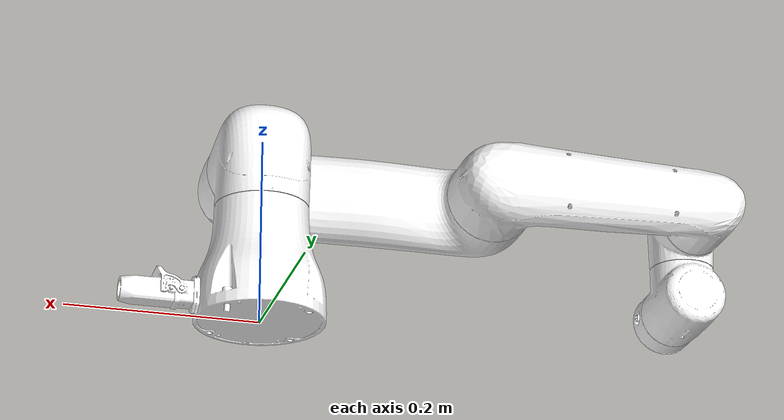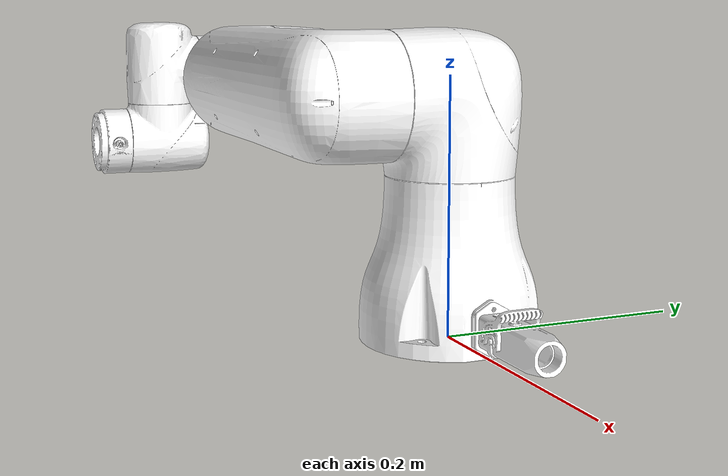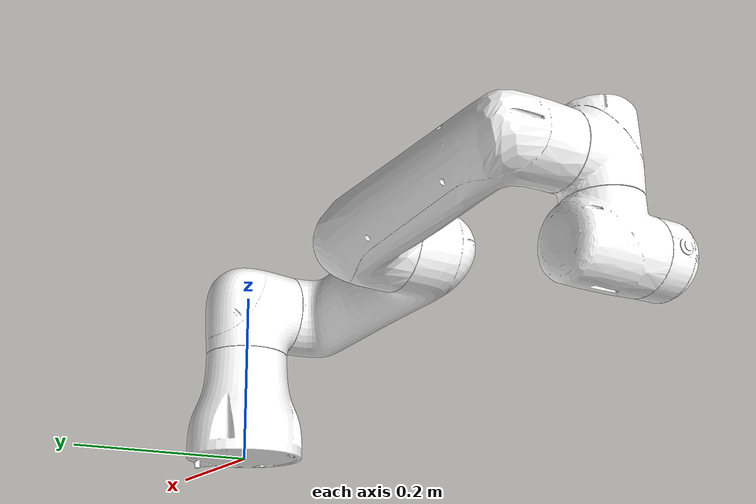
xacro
<?xml version="1.0" encoding="utf-8"?>
<robot name="smri3" xmlns:xacro="http://www.ros.org/wiki/xacro">
  <xacro:arg name="robot_ip" default=""/>
  <xacro:arg name="hardware_backend" default="real"/>
  <xacro:arg name="log_passthrough_commands" default="false"/>
  <xacro:arg name="gazebo_controllers_file" default="$(find smrcore_hardware)/config/smri3_gazebo_controllers.yaml"/>
  <xacro:property name="hardware_backend_value" value="$(arg hardware_backend)"/>
  <xacro:include filename="$(find smrcore_description)/urdf/smri3.ros2_control.xacro"/>
  <link
    name="base_link">
    <inertial>
      <origin
        xyz="0.0012271 3.5719E-05 0.067242"
        rpy="0 0 0" />
      <mass
        value="2.3653" />
      <inertia
        ixx="0.0042835"
        ixy="-3.3891E-07"
        ixz="-3.3159E-05"
        iyy="0.0041819"
        iyz="-2.8837E-06"
        izz="0.0038594" />
    </inertial>
    <visual>
      <origin
        xyz="0 0 0"
        rpy="0 0 0" />
      <geometry>
        <mesh
          filename="package://smrcore_description/meshes/smri3/base_link.STL" />
      </geometry>
      <material
        name="">
        <color
          rgba="1 1 1 1" />
      </material>
    </visual>
    <collision>
      <origin
        xyz="0 0 0"
        rpy="0 0 0" />
      <geometry>
        <mesh
          filename="package://smrcore_description/meshes/smri3/base_link.STL" />
      </geometry>
    </collision>
  </link>
  <link
    name="shoulder_link">
    <inertial>
      <origin
        xyz="-0.014568 -3.2077E-05 0.055988"
        rpy="0 0 0" />
      <mass
        value="2.1469" />
      <inertia
        ixx="0.0025223"
        ixy="2.9436E-06"
        ixz="0.00024428"
        iyy="0.0028291"
        iyz="-4.3095E-07"
        izz="0.0028887" />
    </inertial>
    <visual>
      <origin
        xyz="0 0 0"
        rpy="0 0 0" />
      <geometry>
        <mesh
          filename="package://smrcore_description/meshes/smri3/shoulder_link.STL" />
      </geometry>
      <material
        name="">
        <color
          rgba="1 1 1 1" />
      </material>
    </visual>
    <collision>
      <origin
        xyz="0 0 0"
        rpy="0 0 0" />
      <geometry>
        <mesh
          filename="package://smrcore_description/meshes/smri3/shoulder_link.STL" />
      </geometry>
    </collision>
  </link>
  <joint
    name="base_joint"
    type="revolute">
    <origin
      xyz="0 0 0.1245"
      rpy="0 0 0" />
    <parent
      link="base_link" />
    <child
      link="shoulder_link" />
    <axis
      xyz="0 0 1" />
    <!-- dynamics: aligned with robot.xml joint damping / frictionloss -->
    <dynamics
      damping="1.37712"
      friction="2.12262" />
    <limit
      lower="-6.283185307"
      upper="6.283185307"
      effort="200" velocity="3.14" />
  </joint>
  <link
    name="upper_arm_link">
    <inertial>
      <origin
        xyz="-0.1221 2.3317E-06 0.043604"
        rpy="0 0 0" />
      <mass
        value="1.2763" />
      <inertia
        ixx="0.0015357"
        ixy="2.7236E-07"
        ixz="0.00015542"
        iyy="0.013496"
        iyz="3.9216E-08"
        izz="0.01436" />
    </inertial>
    <visual>
      <origin
        xyz="0 0 0"
        rpy="0 0 0" />
      <geometry>
        <mesh
          filename="package://smrcore_description/meshes/smri3/upper_arm_link.STL" />
      </geometry>
      <material
        name="">
        <color
          rgba="1 1 1 1" />
      </material>
    </visual>
    <collision>
      <origin
        xyz="0 0 0"
        rpy="0 0 0" />
      <geometry>
        <mesh
          filename="package://smrcore_description/meshes/smri3/upper_arm_link.STL" />
      </geometry>
    </collision>
  </link>
  <joint
    name="shoulder_joint"
    type="revolute">
    <origin
      xyz="0 -0.0462 0.061"
      rpy="1.5708 0 0" />
    <parent
      link="shoulder_link" />
    <child
      link="upper_arm_link" />
    <axis
      xyz="0 0 1" />
    <dynamics
      damping="1.43903"
      friction="1.66347" />
    <limit
      lower="-4.36332313"
      upper="1.221730476"
      effort="200" velocity="3.14" />
  </joint>
  <link
    name="lower_arm_link">
    <inertial>
      <origin
        xyz="-0.070306 0.00048901 -0.021154"
        rpy="0 0 0" />
      <mass
        value="3.1461" />
      <inertia
        ixx="0.0034995"
        ixy="-2.2813E-07"
        ixz="-0.00055074"
        iyy="0.013403"
        iyz="-2.7583E-06"
        izz="0.013226" />
    </inertial>
    <visual>
      <origin
        xyz="0 0 0"
        rpy="0 0 0" />
      <geometry>
        <mesh
          filename="package://smrcore_description/meshes/smri3/lower_arm_link.STL" />
      </geometry>
      <material
        name="">
        <color
          rgba="1 1 1 1" />
      </material>
    </visual>
    <collision>
      <origin
        xyz="0 0 0"
        rpy="0 0 0" />
      <geometry>
        <mesh
          filename="package://smrcore_description/meshes/smri3/lower_arm_link.STL" />
      </geometry>
    </collision>
  </link>
  <joint
    name="elbow_joint"
    type="revolute">
    <origin
      xyz="-0.263 0 0"
      rpy="0 0 0" />
    <parent
      link="upper_arm_link" />
    <child
      link="lower_arm_link" />
    <axis
      xyz="0 0 1" />
    <dynamics
      damping="1.61981"
      friction="2.73848" />
    <limit
      lower="-2.757620218"
      upper="2.757620218"
      effort="200" velocity="3.14" />
  </joint>
  <link
    name="proximal_wrist_link">
    <inertial>
      <origin
        xyz="8.7148E-05 -0.0025009 0.040305"
        rpy="0 0 0" />
      <mass
        value="0.7728" />
      <inertia
        ixx="0.00035692"
        ixy="-4.0722E-08"
        ixz="9.0915E-08"
        iyy="0.00050564"
        iyz="5.7996E-05"
        izz="0.00038996" />
    </inertial>
    <visual>
      <origin
        xyz="0 0 0"
        rpy="0 0 0" />
      <geometry>
        <mesh
          filename="package://smrcore_description/meshes/smri3/proximal_wrist_link.STL" />
      </geometry>
      <material
        name="">
        <color
          rgba="1 1 1 1" />
      </material>
    </visual>
    <collision>
      <origin
        xyz="0 0 0"
        rpy="0 0 0" />
      <geometry>
        <mesh
          filename="package://smrcore_description/meshes/smri3/proximal_wrist_link.STL" />
      </geometry>
    </collision>
  </link>
  <joint
    name="wrist1_joint"
    type="revolute">
    <origin
      xyz="-0.236 0 0.0158"
      rpy="0 0 0" />
    <parent
      link="lower_arm_link" />
    <child
      link="proximal_wrist_link" />
    <axis
      xyz="0 0 1" />
    <dynamics
      damping="0.22439"
      friction="0.50985" />
    <limit
      lower="-4.71238898"
      upper="1.570796327"
      effort="120" velocity="3.14" />
  </joint>
  <link
    name="distal_wrist_link">
    <inertial>
      <origin
        xyz="-7.8317E-05 0.0024461 0.039842"
        rpy="0 0 0" />
      <mass
        value="0.7827" />
      <inertia
        ixx="0.00035481"
        ixy="-3.3296E-08"
        ixz="-1.8547E-07"
        iyy="0.00051068"
        iyz="-5.5945E-05"
        izz="0.00038996" />
    </inertial>
    <visual>
      <origin
        xyz="0 0 0"
        rpy="0 0 0" />
      <geometry>
        <mesh
          filename="package://smrcore_description/meshes/smri3/distal_wrist_link.STL" />
      </geometry>
      <material
        name="">
        <color
          rgba="1 1 1 1" />
      </material>
    </visual>
    <collision>
      <origin
        xyz="0 0 0"
        rpy="0 0 0" />
      <geometry>
        <mesh
          filename="package://smrcore_description/meshes/smri3/distal_wrist_link.STL" />
      </geometry>
    </collision>
  </link>
  <joint
    name="wrist2_joint"
    type="revolute">
    <origin
      xyz="0 -0.038 0.041"
      rpy="1.5708 0 0" />
    <parent
      link="proximal_wrist_link" />
    <child
      link="distal_wrist_link" />
    <axis
      xyz="0 0 1" />
    <dynamics
      damping="0.19644"
      friction="0.51623" />
    <limit
      lower="-2.268928028"
      upper="2.268928028"
      effort="120" velocity="3.14" />
  </joint>
  <link
    name="flange_link">
    <inertial>
      <origin
        xyz="0.00029338 -0.00022112 0.01719"
        rpy="0 0 0" />
      <mass
        value="0.17609" />
      <inertia
        ixx="6.4295E-05"
        ixy="1.5695E-08"
        ixz="3.1492E-07"
        iyy="6.2963E-05"
        iyz="-5.8072E-08"
        izz="0.00011856" />
    </inertial>
    <visual>
      <origin
        xyz="0 0 0"
        rpy="0 0 0" />
      <geometry>
        <mesh
          filename="package://smrcore_description/meshes/smri3/flange_link.STL" />
      </geometry>
      <material
        name="">
        <color
          rgba="1 1 1 1" />
      </material>
    </visual>
    <collision>
      <origin
        xyz="0 0 0"
        rpy="0 0 0" />
      <geometry>
        <mesh
          filename="package://smrcore_description/meshes/smri3/flange_link.STL" />
      </geometry>
    </collision>
  </link>
  <joint
    name="wrist3_joint"
    type="revolute">
    <origin
      xyz="0 0.0385 0.041"
      rpy="-1.5708 0 0" />
    <parent
      link="distal_wrist_link" />
    <child
      link="flange_link" />
    <axis
      xyz="0 0 1" />
    <dynamics
      damping="0.20446"
      friction="0.56759" />
    <limit
      lower="-6.283185307"
      upper="6.283185307"
      effort="80" velocity="3.14" />
  </joint>
  <link
    name="tool0_link">
    <inertial>
      <origin
        xyz="0 0 0"
        rpy="0 0 0" />
      <mass
        value="0.001" />
      <inertia
        ixx="1e-06"
        ixy="0"
        ixz="0"
        iyy="1e-06"
        iyz="0"
        izz="1e-06" />
    </inertial>
    <visual>
      <origin
        xyz="0 0 0"
        rpy="0 0 0" />
      <geometry>
        <mesh
          filename="package://smrcore_description/meshes/smri3/tool0_link.STL" />
      </geometry>
      <material
        name="">
        <color
          rgba="1 1 1 1" />
      </material>
    </visual>
    <collision>
      <origin
        xyz="0 0 0"
        rpy="0 0 0" />
      <geometry>
        <mesh
          filename="package://smrcore_description/meshes/smri3/tool0_link.STL" />
      </geometry>
    </collision>
  </link>
  <joint
    name="tool0_joint"
    type="fixed">
    <origin
      xyz="0 0 0.0315"
      rpy="0 0 0" />
    <parent
      link="flange_link" />
    <child
      link="tool0_link" />
    <axis
      xyz="0 0 0" />
  </joint>
  <xacro:if value="${hardware_backend_value == 'gazebo'}">
    <!-- Keep Gazebo's URDF root inertial-free without changing the default
         exported tree used by RViz, MoveIt, and the real hardware backend. -->
    <link name="world"/>
    <joint name="world_to_base_link" type="fixed">
      <parent link="world"/>
      <child link="base_link"/>
      <origin xyz="0 0 0" rpy="0 0 0"/>
    </joint>
  </xacro:if>
  <xacro:smri3_ros2_control robot_ip="$(arg robot_ip)" hardware_backend="$(arg hardware_backend)" log_passthrough_commands="$(arg log_passthrough_commands)"/>
  <xacro:if value="${hardware_backend_value == 'gazebo'}">
    <gazebo reference="base_link">
      <gravity>false</gravity>
      <kinematic>true</kinematic>
    </gazebo>
    <gazebo>
      <plugin filename="libgazebo_ros2_control.so" name="gazebo_ros2_control">
        <parameters>$(arg gazebo_controllers_file)</parameters>
      </plugin>
    </gazebo>
  </xacro:if>
</robot>
